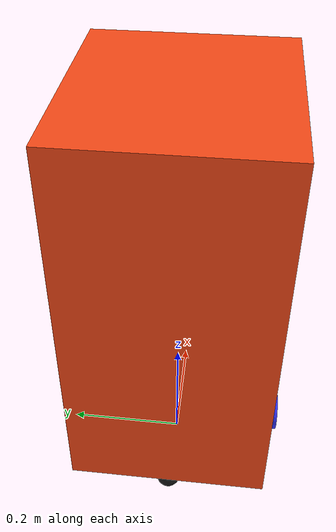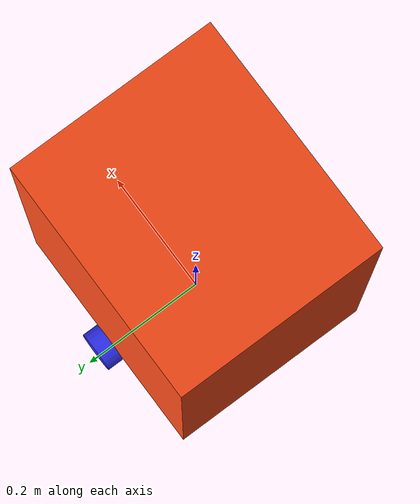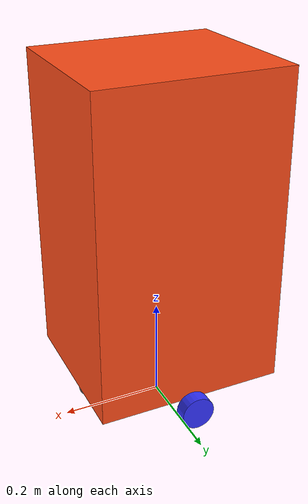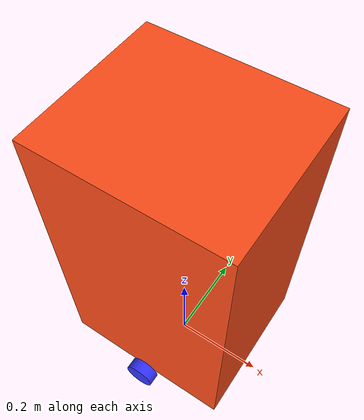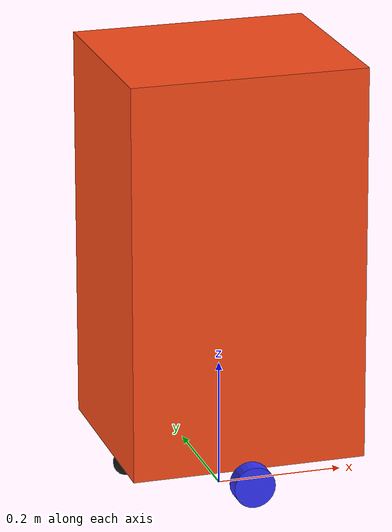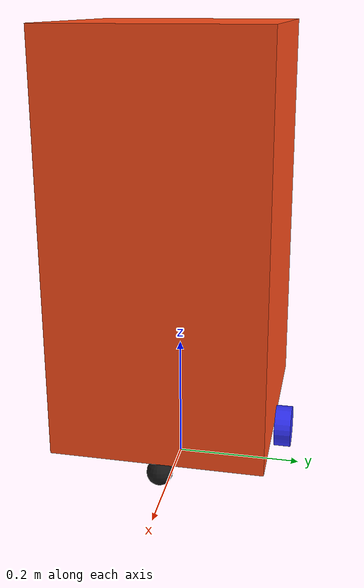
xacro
<?xml version="1.0"?>
<robot xmlns:xacro="http://www.ros.org/wiki/xacro">

    <xacro:include filename="inertial_macros.xacro" />

    <!-- MATERIALS -->
    <material name="black">
        <color rgba="0.1 0.1 0.1 1" />
    </material>

    <material name="white">
        <color rgba="1 1 1 1" />
    </material>

    <material name="blue">
        <color rgba="0.2 0.2 1  1" />
    </material>

    <material name="orange">
        <color rgba="1 0.3 0.1 1" />
    </material>

    <material name="red">
        <color rgba="1 0.1 0.1 1" />
    </material>

    <!-- DIMENSIONS -->

    <!-- XYZ
        x points towards front
        y points left
        z points up
    -->

    <!-- RPY
        R = roll (rotation around x-axis)
        P = pitch (rotation around y-axis)
        Y = yaw (rotation around z-axis)
    -->

    <xacro:property name="chassis_depth" value="0.368" />
    <xacro:property name="chassis_width" value="0.321" />
    <xacro:property name="chassis_height" value="0.620" />

    <xacro:property name="wheel_diameter" value="0.065" />
    <xacro:property name="wheel_radius" value="${wheel_diameter / 2}" />
    <xacro:property name="wheel_length" value="0.026" />

    <!-- the motor mount affects axis of wheels by -20mm from base -->
    <xacro:property name="motor_mount_offset" value="0.020" />

    <!-- if tires are touching ground, then base is offset by 52.5mm    -->
    <xacro:property name="chassis_z" value="${(wheel_radius + motor_mount_offset) + chassis_height / 2}" />

    <!--
        origin should be center of the wheelbase axis, wheel radius from the front of the chassis
    -->
    <xacro:property name="wheelbase_x" value="${chassis_depth / 2}" />
    <xacro:property name="wheelbase_y" value="${chassis_width / 2}" />
    <xacro:property name="wheel_y" value="${wheelbase_y + (wheel_length / 2)}" />

    <xacro:property name="caster_x" value="- ${chassis_width / 3} - ${wheel_radius}" />

   <!-- BASE FOOTPRINT - for odometry on ground plane -->
    <link name="base_footprint">
    </link>

    <!-- BASE LINK -->
    <link name="base_link">
    </link>

    <!-- Joint connecting base_footprint to base_link -->
    <joint name="base_footprint_to_base_link" type="fixed">
        <parent link="base_footprint" />
        <child link="base_link" />
        <origin xyz="0 0 ${wheel_radius}" rpy="0 0 0" />
    </joint>

    <!-- CHASSIS  Joint + Link -->
    <joint name="chassis_to_base_link" type="fixed">
        <parent link="base_link" />
        <child link="chassis" />
        <origin xyz="0 0 0" rpy="0 0 0" /> <!-- Centered on origin -->
    </joint>

    <link name="chassis">
        <visual>
            <origin xyz="0 0 ${chassis_z}" rpy="0 0 0" /> <!-- Centered on origin -->
            <geometry>
                <box size="${chassis_depth} ${chassis_width} ${chassis_height}" />
            </geometry>
            <material name="orange" />
        </visual>
        <collision>
            <origin xyz="0 0 ${chassis_z}" rpy="0 0 0" /> <!-- Centered on origin -->
            <geometry>
                <box size="${chassis_depth} ${chassis_width} ${chassis_height}" />
            </geometry>
        </collision>
        <xacro:inertial_box mass="7.5" x="${chassis_depth}" y="${chassis_width}"
            z="${chassis_height}">
            <origin xyz="0 0 ${chassis_z}" rpy="0 0 0" /> <!-- Centered on origin -->
        </xacro:inertial_box>
    </link>

    <gazebo reference="chassis">
        <material>Gazebo/Orange</material>
    </gazebo>

    <!-- LEFT WHEEL Joint + Link -->

    <joint name="left_wheel_to_base_link" type="continuous">
        <parent link="base_link" />
        <child link="left_wheel" />
        <origin xyz="0 ${wheel_y} ${wheel_radius}" rpy="0 0 0" />
        <axis xyz="0 1 0" />
    </joint>

    <link name="left_wheel">
        <visual>
            <origin xyz="0 0 0" rpy="${pi/2} 0 0" />
            <geometry>
                <cylinder radius="${wheel_radius}" length="${wheel_length}" />
            </geometry>
            <material name="blue" />
        </visual>
        <collision>
            <origin xyz="0 0 0" rpy="${pi/2} 0 0" />
            <geometry>
                <cylinder radius="${wheel_radius}" length="${wheel_length}" />
            </geometry>
        </collision>
        <xacro:inertial_cylinder mass="0.1" length="${wheel_length}" radius="${wheel_radius}">
            <origin xyz="0 0 0" rpy="${pi/2} 0 0" />
        </xacro:inertial_cylinder>
    </link>

    <gazebo reference="left_wheel">
        <material>Gazebo/Blue</material>
    </gazebo>

    <!-- RIGHT WHEEL Joint + Link -->

    <joint name="right_wheel_to_base_link" type="continuous">
        <parent link="base_link" />
        <child link="right_wheel" />
        <origin xyz="0 -${wheel_y} ${wheel_radius}" rpy="0 0 0" />
        <axis xyz="0 1 0" />
    </joint>

    <link name="right_wheel">
        <visual>
            <origin xyz="0 0 0" rpy="${pi/2} 0 0" />
            <geometry>
                <cylinder radius="${wheel_radius}" length="${wheel_length}" />
            </geometry>
            <material name="blue" />
        </visual>
        <collision>
            <origin xyz="0 0 0" rpy="${pi/2} 0 0" />
            <geometry>
                <cylinder radius="${wheel_radius}" length="${wheel_length}" />
            </geometry>
        </collision>
        <xacro:inertial_cylinder mass="0.1" length="${wheel_length}" radius="${wheel_radius}">
            <origin xyz="0 0 0" rpy="${pi/2} 0 0" />
        </xacro:inertial_cylinder>
    </link>

    <gazebo reference="right_wheel">
        <material>Gazebo/Blue</material>
    </gazebo>

    <!-- CASTER WHEEL (Spherical, for simulation stability) -->
    <joint name="caster_wheel_f_joint" type="fixed">
        <parent link="base_link" />
        <child link="caster_wheel_f" />
        <origin xyz="-${(wheelbase_x) - (wheel_radius)} 0 0.02" rpy="0 0 0" />
    </joint>

    <link name="caster_wheel_f">
        <visual>
            <geometry>
                <sphere radius="0.02" />
            </geometry>
            <material name="black" />
        </visual>
        <collision>
            <geometry>
                <sphere radius="0.02" />
            </geometry>
        </collision>
        <xacro:inertial_sphere mass="0.1" radius="0.02">
            <origin xyz="0 0 0" rpy="0 0 0" />
        </xacro:inertial_sphere>
    </link>

    <gazebo reference="caster_wheel_f">
        <material>Gazebo/Blue</material>
        <mu1 value="0.001" />
        <mu2 value="0.001" />
    </gazebo>

    <!-- CASTER WHEEL (Spherical, for simulation stability) -->
    <joint name="caster_wheel_b_joint" type="fixed">
        <parent link="base_link" />
        <child link="caster_wheel_b" />
        <origin xyz="${(wheelbase_x) - (wheel_radius)} 0 0.02" rpy="0 0 0" />
    </joint>

    <link name="caster_wheel_b">
        <visual>
            <geometry>
                <sphere radius="0.02" />
            </geometry>
            <material name="black" />
        </visual>
        <collision>
            <geometry>
                <sphere radius="0.02" />
            </geometry>
        </collision>
        <xacro:inertial_sphere mass="0.1" radius="0.02">
            <origin xyz="0 0 0" rpy="0 0 0" />
        </xacro:inertial_sphere>
    </link>

    <gazebo reference="caster_wheel_b">
        <material>Gazebo/Blue</material>
        <mu1 value="0.001" />
        <mu2 value="0.001" />
    </gazebo>

</robot>

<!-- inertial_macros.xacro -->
<robot xmlns:xacro="http://www.ros.org/wiki/xacro">
    <!-- filename: inertial_macros.xacro -->
    <!-- Specify some standard inertial calculations
    https://en.wikipedia.org/wiki/List_of_moments_of_inertia -->
    <!-- These make use of xacro's mathematical functionality -->

    <xacro:macro name="inertial_sphere" params="mass radius *origin">
        <inertial>
            <xacro:insert_block name="origin" />
            <mass value="${mass}" />
            <inertia ixx="${(2/5) * mass * (radius*radius)}" ixy="0.0" ixz="0.0"
                iyy="${(2/5) * mass * (radius*radius)}" iyz="0.0"
                izz="${(2/5) * mass * (radius*radius)}" />
        </inertial>
    </xacro:macro>

    <xacro:macro name="inertial_box" params="mass x y z *origin">
        <inertial>
            <xacro:insert_block name="origin" />
            <mass value="${mass}" />
            <inertia ixx="${(1/12) * mass * (y*y+z*z)}" ixy="0.0" ixz="0.0"
                iyy="${(1/12) * mass * (x*x+z*z)}" iyz="0.0"
                izz="${(1/12) * mass * (x*x+y*y)}" />
        </inertial>
    </xacro:macro>

    <xacro:macro name="inertial_cylinder" params="mass length radius *origin">
        <inertial>
            <xacro:insert_block name="origin" />
            <mass value="${mass}" />
            <inertia ixx="${(1/12) * mass * (3*radius*radius + length*length)}" ixy="0.0" ixz="0.0"
                iyy="${(1/12) * mass * (3*radius*radius + length*length)}" iyz="0.0"
                izz="${(1/2) * mass * (radius*radius)}" />
        </inertial>
    </xacro:macro>

</robot>
